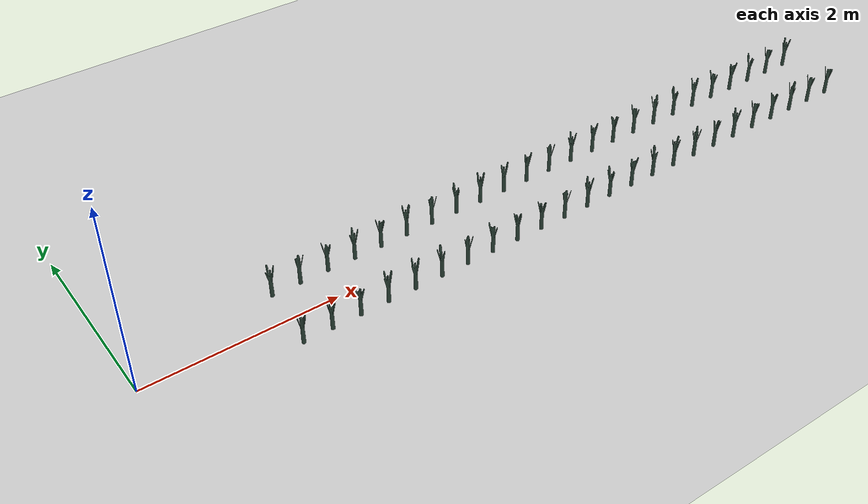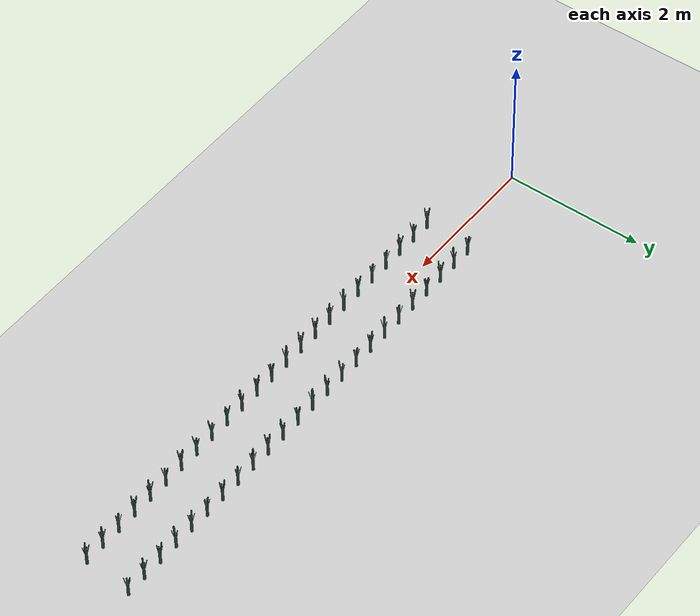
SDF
<sdf version="1.6">
 <world name="default">
  <light name="sun" type="directional">
   <pose>0 0 10 0 -0 0</pose>
   <diffuse>0.5 0.5 0.5 1</diffuse>
   <specular>0.1 0.1 0.1 1</specular>
   <attenuation>
    <range>1000</range>
    <constant>0.9</constant>
    <linear>0.01</linear>
    <quadratic>0.001</quadratic>
   </attenuation>
   <direction>0.9 0.5 -1</direction>
  </light>
  <scene><background>130 200 255 1</background><ambient>130 140 140 1</ambient></scene>
  <include><uri>model://dirt_plane</uri></include>
  <include><uri>model://Leek</uri><pose>1.500000 0.350000 0.15 0 0 -12.621897</pose><static>0</static></include>
  <include><uri>model://Leek</uri><pose>1.800000 0.350000 0.15 0 0 -58.774725</pose><static>0</static></include>
  <include>
   <uri>model://Leek</uri>
   <pose>2.100000 0.350000 0.15 0 0 -135.491517</pose>
   <static>0</static>
  </include>
  <include>
   <uri>model://Leek</uri>
   <pose>2.400000 0.350000 0.15 0 0 -176.204713</pose>
   <static>0</static>
  </include>
  <include><uri>model://Leek</uri><pose>2.700000 0.350000 0.15 0 0 9.171080</pose><static>0</static></include>
  <include><uri>model://Leek</uri><pose>3.000000 0.350000 0.15 0 0 75.726682</pose><static>0</static></include>
  <include>
   <uri>model://Leek</uri>
   <pose>3.300000 0.350000 0.15 0 0 -146.904193</pose>
   <static>0</static>
  </include>
  <include>
   <uri>model://Leek</uri>
   <pose>3.600000 0.350000 0.15 0 0 -149.151260</pose>
   <static>0</static>
  </include>
  <include><uri>model://Leek</uri><pose>3.900000 0.350000 0.15 0 0 -56.514834</pose><static>0</static></include>
  <include>
   <uri>model://Leek</uri>
   <pose>4.200000 0.350000 0.15 0 0 -146.052545</pose>
   <static>0</static>
  </include>
  <include><uri>model://Leek</uri><pose>4.500000 0.350000 0.15 0 0 10.818515</pose><static>0</static></include>
  <include><uri>model://Leek</uri><pose>4.800000 0.350000 0.15 0 0 -96.704126</pose><static>0</static></include>
  <include><uri>model://Leek</uri><pose>5.100000 0.350000 0.15 0 0 49.898075</pose><static>0</static></include>
  <include><uri>model://Leek</uri><pose>5.400000 0.350000 0.15 0 0 4.525660</pose><static>0</static></include>
  <include><uri>model://Leek</uri><pose>5.700000 0.350000 0.15 0 0 72.244037</pose><static>0</static></include>
  <include>
   <uri>model://Leek</uri>
   <pose>6.000000 0.350000 0.15 0 0 -123.601753</pose>
   <static>0</static>
  </include>
  <include><uri>model://Leek</uri><pose>6.300000 0.350000 0.15 0 0 113.586058</pose><static>0</static></include>
  <include><uri>model://Leek</uri><pose>6.600000 0.350000 0.15 0 0 139.677561</pose><static>0</static></include>
  <include>
   <uri>model://Leek</uri>
   <pose>6.900000 0.350000 0.15 0 0 -144.427885</pose>
   <static>0</static>
  </include>
  <include><uri>model://Leek</uri><pose>7.200000 0.350000 0.15 0 0 -73.342988</pose><static>0</static></include>
  <include>
   <uri>model://Leek</uri>
   <pose>7.500000 0.350000 0.15 0 0 -127.722249</pose>
   <static>0</static>
  </include>
  <include><uri>model://Leek</uri><pose>7.800000 0.350000 0.15 0 0 -98.981252</pose><static>0</static></include>
  <include><uri>model://Leek</uri><pose>8.100000 0.350000 0.15 0 0 -41.584389</pose><static>0</static></include>
  <include><uri>model://Leek</uri><pose>8.400000 0.350000 0.15 0 0 87.414934</pose><static>0</static></include>
  <include><uri>model://Leek</uri><pose>1.433745 -0.350000 0.15 0 0 53.238392</pose><static>0</static></include>
  <include>
   <uri>model://Leek</uri>
   <pose>1.733745 -0.350000 0.15 0 0 -164.320872</pose>
   <static>0</static>
  </include>
  <include>
   <uri>model://Leek</uri>
   <pose>2.033745 -0.350000 0.15 0 0 -110.579131</pose>
   <static>0</static>
  </include>
  <include>
   <uri>model://Leek</uri>
   <pose>2.333745 -0.350000 0.15 0 0 -106.661612</pose>
   <static>0</static>
  </include>
  <include><uri>model://Leek</uri><pose>2.633745 -0.350000 0.15 0 0 25.258246</pose><static>0</static></include>
  <include>
   <uri>model://Leek</uri>
   <pose>2.933745 -0.350000 0.15 0 0 -30.075205</pose>
   <static>0</static>
  </include>
  <include><uri>model://Leek</uri><pose>3.233745 -0.350000 0.15 0 0 22.767342</pose><static>0</static></include>
  <include>
   <uri>model://Leek</uri>
   <pose>3.533745 -0.350000 0.15 0 0 -10.441811</pose>
   <static>0</static>
  </include>
  <include>
   <uri>model://Leek</uri>
   <pose>3.833745 -0.350000 0.15 0 0 -110.074566</pose>
   <static>0</static>
  </include>
  <include>
   <uri>model://Leek</uri>
   <pose>4.133745 -0.350000 0.15 0 0 -166.768747</pose>
   <static>0</static>
  </include>
  <include>
   <uri>model://Leek</uri>
   <pose>4.433745 -0.350000 0.15 0 0 -71.672893</pose>
   <static>0</static>
  </include>
  <include>
   <uri>model://Leek</uri>
   <pose>4.733745 -0.350000 0.15 0 0 100.139270</pose>
   <static>0</static>
  </include>
  <include>
   <uri>model://Leek</uri>
   <pose>5.033745 -0.350000 0.15 0 0 158.574057</pose>
   <static>0</static>
  </include>
  <include><uri>model://Leek</uri><pose>5.333745 -0.350000 0.15 0 0 79.732848</pose><static>0</static></include>
  <include>
   <uri>model://Leek</uri>
   <pose>5.633745 -0.350000 0.15 0 0 107.860539</pose>
   <static>0</static>
  </include>
  <include>
   <uri>model://Leek</uri>
   <pose>5.933745 -0.350000 0.15 0 0 -89.255629</pose>
   <static>0</static>
  </include>
  <include>
   <uri>model://Leek</uri>
   <pose>6.233745 -0.350000 0.15 0 0 -38.672502</pose>
   <static>0</static>
  </include>
  <include>
   <uri>model://Leek</uri>
   <pose>6.533745 -0.350000 0.15 0 0 -21.963110</pose>
   <static>0</static>
  </include>
  <include>
   <uri>model://Leek</uri>
   <pose>6.833745 -0.350000 0.15 0 0 150.222368</pose>
   <static>0</static>
  </include>
  <include>
   <uri>model://Leek</uri>
   <pose>7.133745 -0.350000 0.15 0 0 159.564002</pose>
   <static>0</static>
  </include>
  <include><uri>model://Leek</uri><pose>7.433745 -0.350000 0.15 0 0 84.585806</pose><static>0</static></include>
  <include>
   <uri>model://Leek</uri>
   <pose>7.733745 -0.350000 0.15 0 0 -49.893044</pose>
   <static>0</static>
  </include>
  <include>
   <uri>model://Leek</uri>
   <pose>8.033745 -0.350000 0.15 0 0 159.350942</pose>
   <static>0</static>
  </include>
  <include>
   <uri>model://Leek</uri>
   <pose>8.333745 -0.350000 0.15 0 0 -72.970576</pose>
   <static>0</static>
  </include>
 </world>
</sdf>

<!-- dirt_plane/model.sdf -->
<sdf version="1.4">
<model name="dirt_plane">
  <static>true</static>
    <link name="link">
      <collision name="collision">
        <geometry>
          <plane>
            <normal>0 0 1</normal>
            <size>100 100</size>
          </plane>
        </geometry>
        <surface>
          <friction>
            <ode>
              <mu>0.99</mu>
              <mu2>0.99</mu2>
            </ode>
          </friction>
        </surface>
      </collision>
      <visual name="visual">
        <cast_shadows>false</cast_shadows>
        <geometry>
          <plane>
            <normal>0 0 1</normal>
            <size>100 100</size>
          </plane>
        </geometry>
        <material>
          <script>
            <uri>model://ground_plane/materials/scripts/my_ground_plane.material</uri>
            <uri>model://ground_plane/materials/textures</uri>
            <name>my_ground_plane/Dirt</name>
          </script>
        </material>
      </visual>
    </link>
  </model>
</sdf>

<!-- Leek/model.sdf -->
<sdf version='1.6'>
  <model name='Leek'>
    <link name='link'>
      <pose frame=''>0 0 0 0 -0 0</pose>
      <inertial>
        <mass>1</mass>
        <inertia>
          <ixx>0.145833</ixx>
          <ixy>0</ixy>
          <ixz>0</ixz>
          <iyy>0.145833</iyy>
          <iyz>0</iyz>
          <izz>0.125</izz>
        </inertia>
        <pose frame=''>0 0 0 0 -0 0</pose>
      </inertial>
      <self_collide>0</self_collide>
      <kinematic>0</kinematic>
      <gravity>1</gravity>
      <visual name='visual'>
        <geometry>
          <mesh>
            <uri>model://Leek/Poireau.dae</uri>
            <scale>1 1 1</scale>
          </mesh>
        </geometry>
        <material>
          <script>
            <name>Gazebo/Grey</name>
            <uri>file://media/materials/scripts/gazebo.material</uri>
          </script>
          <ambient>0.3 0.6 0.5 0</ambient>
          <diffuse>0.2 0.3 0.25 0</diffuse>
          <specular>0 0 0 1</specular>
          <emissive>0 0 0 1</emissive>
          <shader type='vertex'>
            <normal_map>__default__</normal_map>
          </shader>
        </material>
        <pose frame=''>0 0 -0.08 0 -0 0</pose>
        <cast_shadows>1</cast_shadows>
        <transparency>0</transparency>
      </visual>
      <collision name='collision'>
        <laser_retro>0</laser_retro>
        <max_contacts>10</max_contacts>
        <pose frame=''>0 0 0 0 -0 0</pose>
        <geometry>
          <cylinder>
            <radius>0.02</radius>
            <length>0.25</length>
          </cylinder>
        </geometry>
        <surface>
          <friction>
            <ode>
              <mu>1</mu>
              <mu2>1</mu2>
              <fdir1>0 0 0</fdir1>
              <slip1>0</slip1>
              <slip2>0</slip2>
            </ode>
            <torsional>
              <coefficient>1</coefficient>
              <patch_radius>0</patch_radius>
              <surface_radius>0</surface_radius>
              <use_patch_radius>1</use_patch_radius>
              <ode>
                <slip>0</slip>
              </ode>
            </torsional>
          </friction>
          <bounce>
            <restitution_coefficient>0</restitution_coefficient>
            <threshold>1e+06</threshold>
          </bounce>
          <contact>
            <collide_without_contact>0</collide_without_contact>
            <collide_without_contact_bitmask>1</collide_without_contact_bitmask>
            <collide_bitmask>1</collide_bitmask>
            <ode>
              <soft_cfm>0</soft_cfm>
              <soft_erp>0.2</soft_erp>
              <kp>1e+13</kp>
              <kd>1</kd>
              <max_vel>0.01</max_vel>
              <min_depth>0</min_depth>
            </ode>
            <bullet>
              <split_impulse>1</split_impulse>
              <split_impulse_penetration_threshold>-0.01</split_impulse_penetration_threshold>
              <soft_cfm>0</soft_cfm>
              <soft_erp>0.2</soft_erp>
              <kp>1e+13</kp>
              <kd>1</kd>
            </bullet>
          </contact>
        </surface>
      </collision>
    </link>
    <static>0</static>
    <allow_auto_disable>1</allow_auto_disable>
  </model>
</sdf>
